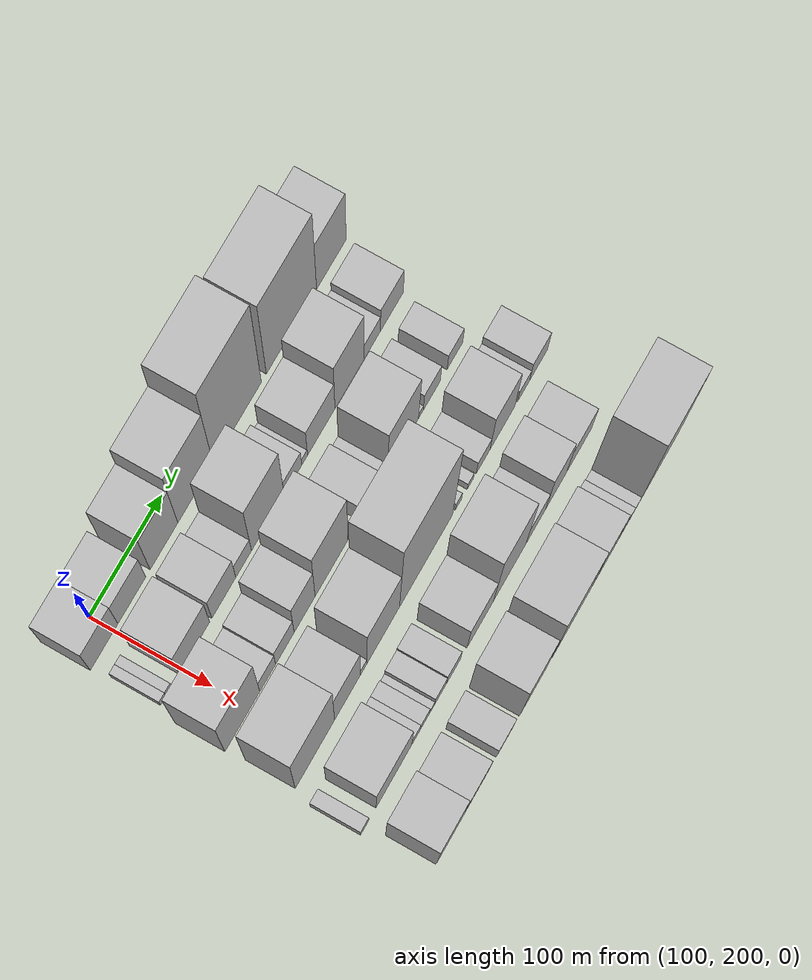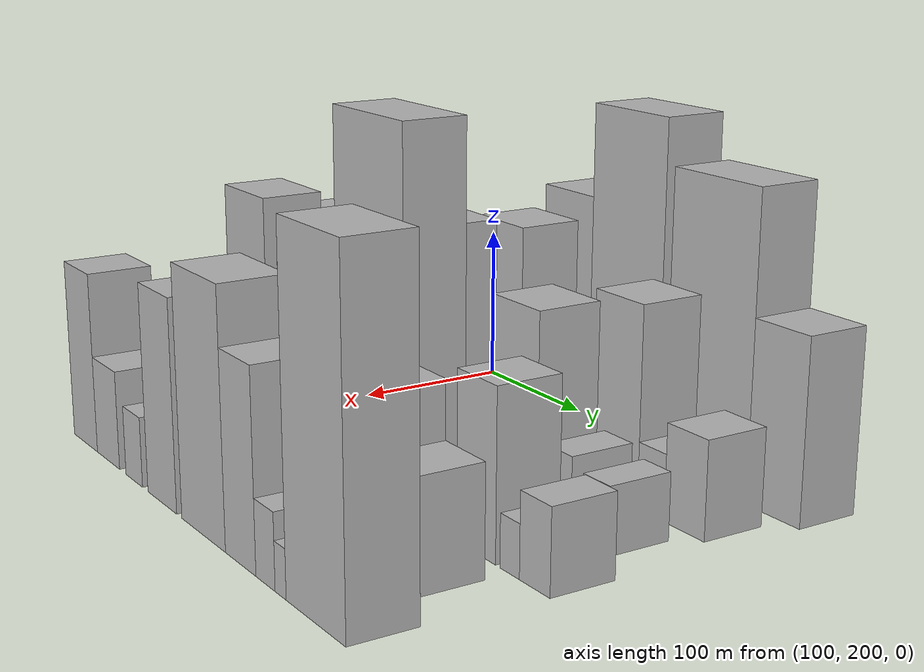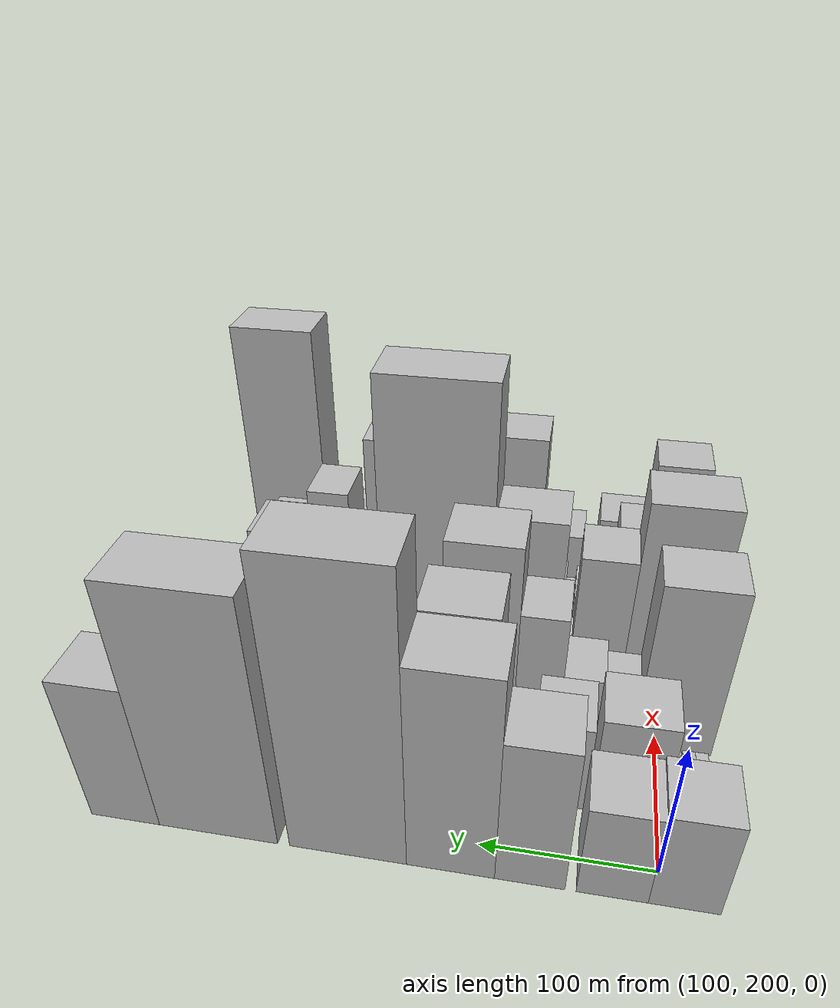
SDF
<sdf version="1.6">
 <world name="default">
  <model name="building_33">
   <static>1</static>
   <pose>100.0000 186.7534 0 0.000000 0.000000 0.000000</pose>
   <link name="link">
    <pose>0 0 36.00 0 0 0</pose>
    <collision name="collision"><geometry><box><size>40.0000 37.7107 72.0000</size></box></geometry></collision>
    <visual name="visual">
     <cast_shadows>0</cast_shadows>
     <geometry><box><size>40.0000 37.7107 72.0000</size></box></geometry>
     <material>
      <script>
       <uri>model://HANNAS_wall/materials/scripts</uri>
       <uri>model://HANNAS_wall/materials/textures</uri>
       <name>vrc/HANNAS_wall</name>
      </script>
     </material>
    </visual>
   </link>
  </model>
  <model name="building_34">
   <static>1</static>
   <pose>100.0000 224.7273 0 0.000000 0.000000 0.000000</pose>
   <link name="link">
    <pose>0 0 34.50 0 0 0</pose>
    <collision name="collision"><geometry><box><size>40.0000 38.2369 69.0000</size></box></geometry></collision>
    <visual name="visual">
     <cast_shadows>0</cast_shadows>
     <geometry><box><size>40.0000 38.2369 69.0000</size></box></geometry>
     <material>
      <script>
       <uri>model://HANNAS_wall/materials/scripts</uri>
       <uri>model://HANNAS_wall/materials/textures</uri>
       <name>vrc/HANNAS_wall</name>
      </script>
     </material>
    </visual>
   </link>
  </model>
  <model name="building_35">
   <static>1</static>
   <pose>100.0000 269.0364 0 0.000000 0.000000 0.000000</pose>
   <link name="link">
    <pose>0 0 54.00 0 0 0</pose>
    <collision name="collision"><geometry><box><size>40.0000 38.3813 108.0000</size></box></geometry></collision>
    <visual name="visual">
     <cast_shadows>0</cast_shadows>
     <geometry><box><size>40.0000 38.3813 108.0000</size></box></geometry>
     <material>
      <script>
       <uri>model://HANNAS_wall/materials/scripts</uri>
       <uri>model://HANNAS_wall/materials/textures</uri>
       <name>vrc/HANNAS_wall</name>
      </script>
     </material>
    </visual>
   </link>
  </model>
  <model name="building_36">
   <static>1</static>
   <pose>100.0000 312.8432 0 0.000000 0.000000 0.000000</pose>
   <link name="link">
    <pose>0 0 75.00 0 0 0</pose>
    <collision name="collision"><geometry><box><size>40.0000 49.2324 150.0000</size></box></geometry></collision>
    <visual name="visual">
     <cast_shadows>0</cast_shadows>
     <geometry><box><size>40.0000 49.2324 150.0000</size></box></geometry>
     <material>
      <script>
       <uri>model://HANNAS_wall/materials/scripts</uri>
       <uri>model://HANNAS_wall/materials/textures</uri>
       <name>vrc/HANNAS_wall</name>
      </script>
     </material>
    </visual>
   </link>
  </model>
  <model name="building_37">
   <static>1</static>
   <pose>100.0000 371.3804 0 0.000000 0.000000 0.000000</pose>
   <link name="link">
    <pose>0 0 103.50 0 0 0</pose>
    <collision name="collision"><geometry><box><size>40.0000 67.8420 207.0000</size></box></geometry></collision>
    <visual name="visual">
     <cast_shadows>0</cast_shadows>
     <geometry><box><size>40.0000 67.8420 207.0000</size></box></geometry>
     <material>
      <script>
       <uri>model://HANNAS_wall/materials/scripts</uri>
       <uri>model://HANNAS_wall/materials/textures</uri>
       <name>vrc/HANNAS_wall</name>
      </script>
     </material>
    </visual>
   </link>
  </model>
  <model name="building_38">
   <static>1</static>
   <pose>100.0000 448.1478 0 0.000000 0.000000 0.000000</pose>
   <link name="link">
    <pose>0 0 90.00 0 0 0</pose>
    <collision name="collision"><geometry><box><size>40.0000 71.6927 180.0000</size></box></geometry></collision>
    <visual name="visual">
     <cast_shadows>0</cast_shadows>
     <geometry><box><size>40.0000 71.6927 180.0000</size></box></geometry>
     <material>
      <script>
       <uri>model://HANNAS_wall/materials/scripts</uri>
       <uri>model://HANNAS_wall/materials/textures</uri>
       <name>vrc/HANNAS_wall</name>
      </script>
     </material>
    </visual>
   </link>
  </model>
  <model name="building_39">
   <static>1</static>
   <pose>100.0000 505.2033 0 0.000000 0.000000 0.000000</pose>
   <link name="link">
    <pose>0 0 54.00 0 0 0</pose>
    <collision name="collision"><geometry><box><size>40.0000 42.4183 108.0000</size></box></geometry></collision>
    <visual name="visual">
     <cast_shadows>0</cast_shadows>
     <geometry><box><size>40.0000 42.4183 108.0000</size></box></geometry>
     <material>
      <script>
       <uri>model://HANNAS_wall/materials/scripts</uri>
       <uri>model://HANNAS_wall/materials/textures</uri>
       <name>vrc/HANNAS_wall</name>
      </script>
     </material>
    </visual>
   </link>
  </model>
  <model name="building_81">
   <static>1</static>
   <pose>155.0000 174.8179 0 0.000000 0.000000 0.000000</pose>
   <link name="link">
    <pose>0 0 9.00 0 0 0</pose>
    <collision name="collision"><geometry><box><size>40.0000 7.5572 18.0000</size></box></geometry></collision>
    <visual name="visual">
     <cast_shadows>0</cast_shadows>
     <geometry><box><size>40.0000 7.5572 18.0000</size></box></geometry>
     <material>
      <script>
       <uri>model://HANNAS_wall/materials/scripts</uri>
       <uri>model://HANNAS_wall/materials/textures</uri>
       <name>vrc/HANNAS_wall</name>
      </script>
     </material>
    </visual>
   </link>
  </model>
  <model name="building_82">
   <static>1</static>
   <pose>155.0000 182.4152 0 0.000000 0.000000 0.000000</pose>
   <link name="link">
    <pose>0 0 9.00 0 0 0</pose>
    <collision name="collision"><geometry><box><size>40.0000 7.6373 18.0000</size></box></geometry></collision>
    <visual name="visual">
     <cast_shadows>0</cast_shadows>
     <geometry><box><size>40.0000 7.6373 18.0000</size></box></geometry>
     <material>
      <script>
       <uri>model://HANNAS_wall/materials/scripts</uri>
       <uri>model://HANNAS_wall/materials/textures</uri>
       <name>vrc/HANNAS_wall</name>
      </script>
     </material>
    </visual>
   </link>
  </model>
  <model name="building_83">
   <static>1</static>
   <pose>155.0000 217.3656 0 0.000000 0.000000 0.000000</pose>
   <link name="link">
    <pose>0 0 37.50 0 0 0</pose>
    <collision name="collision"><geometry><box><size>40.0000 42.2635 75.0000</size></box></geometry></collision>
    <visual name="visual">
     <cast_shadows>0</cast_shadows>
     <geometry><box><size>40.0000 42.2635 75.0000</size></box></geometry>
     <material>
      <script>
       <uri>model://HANNAS_wall/materials/scripts</uri>
       <uri>model://HANNAS_wall/materials/textures</uri>
       <name>vrc/HANNAS_wall</name>
      </script>
     </material>
    </visual>
   </link>
  </model>
  <model name="building_84">
   <static>1</static>
   <pose>155.0000 258.1300 0 0.000000 0.000000 0.000000</pose>
   <link name="link">
    <pose>0 0 33.00 0 0 0</pose>
    <collision name="collision"><geometry><box><size>40.0000 33.2653 66.0000</size></box></geometry></collision>
    <visual name="visual">
     <cast_shadows>0</cast_shadows>
     <geometry><box><size>40.0000 33.2653 66.0000</size></box></geometry>
     <material>
      <script>
       <uri>model://HANNAS_wall/materials/scripts</uri>
       <uri>model://HANNAS_wall/materials/textures</uri>
       <name>vrc/HANNAS_wall</name>
      </script>
     </material>
    </visual>
   </link>
  </model>
  <model name="building_85">
   <static>1</static>
   <pose>155.0000 285.7227 0 0.000000 0.000000 0.000000</pose>
   <link name="link">
    <pose>0 0 21.00 0 0 0</pose>
    <collision name="collision"><geometry><box><size>40.0000 21.9200 42.0000</size></box></geometry></collision>
    <visual name="visual">
     <cast_shadows>0</cast_shadows>
     <geometry><box><size>40.0000 21.9200 42.0000</size></box></geometry>
     <material>
      <script>
       <uri>model://HANNAS_wall/materials/scripts</uri>
       <uri>model://HANNAS_wall/materials/textures</uri>
       <name>vrc/HANNAS_wall</name>
      </script>
     </material>
    </visual>
   </link>
  </model>
  <model name="building_86">
   <static>1</static>
   <pose>155.0000 319.4944 0 0.000000 0.000000 0.000000</pose>
   <link name="link">
    <pose>0 0 69.00 0 0 0</pose>
    <collision name="collision"><geometry><box><size>40.0000 45.6235 138.0000</size></box></geometry></collision>
    <visual name="visual">
     <cast_shadows>0</cast_shadows>
     <geometry><box><size>40.0000 45.6235 138.0000</size></box></geometry>
     <material>
      <script>
       <uri>model://HANNAS_wall/materials/scripts</uri>
       <uri>model://HANNAS_wall/materials/textures</uri>
       <name>vrc/HANNAS_wall</name>
      </script>
     </material>
    </visual>
   </link>
  </model>
  <model name="building_87">
   <static>1</static>
   <pose>155.0000 354.7733 0 0.000000 0.000000 0.000000</pose>
   <link name="link">
    <pose>0 0 21.00 0 0 0</pose>
    <collision name="collision"><geometry><box><size>40.0000 24.9342 42.0000</size></box></geometry></collision>
    <visual name="visual">
     <cast_shadows>0</cast_shadows>
     <geometry><box><size>40.0000 24.9342 42.0000</size></box></geometry>
     <material>
      <script>
       <uri>model://HANNAS_wall/materials/scripts</uri>
       <uri>model://HANNAS_wall/materials/textures</uri>
       <name>vrc/HANNAS_wall</name>
      </script>
     </material>
    </visual>
   </link>
  </model>
  <model name="building_88">
   <static>1</static>
   <pose>155.0000 371.3429 0 0.000000 0.000000 0.000000</pose>
   <link name="link">
    <pose>0 0 9.00 0 0 0</pose>
    <collision name="collision"><geometry><box><size>40.0000 8.2049 18.0000</size></box></geometry></collision>
    <visual name="visual">
     <cast_shadows>0</cast_shadows>
     <geometry><box><size>40.0000 8.2049 18.0000</size></box></geometry>
     <material>
      <script>
       <uri>model://HANNAS_wall/materials/scripts</uri>
       <uri>model://HANNAS_wall/materials/textures</uri>
       <name>vrc/HANNAS_wall</name>
      </script>
     </material>
    </visual>
   </link>
  </model>
  <model name="building_89">
   <static>1</static>
   <pose>155.0000 394.9471 0 0.000000 0.000000 0.000000</pose>
   <link name="link">
    <pose>0 0 36.00 0 0 0</pose>
    <collision name="collision"><geometry><box><size>40.0000 39.0036 72.0000</size></box></geometry></collision>
    <visual name="visual">
     <cast_shadows>0</cast_shadows>
     <geometry><box><size>40.0000 39.0036 72.0000</size></box></geometry>
     <material>
      <script>
       <uri>model://HANNAS_wall/materials/scripts</uri>
       <uri>model://HANNAS_wall/materials/textures</uri>
       <name>vrc/HANNAS_wall</name>
      </script>
     </material>
    </visual>
   </link>
  </model>
  <model name="building_90">
   <static>1</static>
   <pose>155.0000 435.3437 0 0.000000 0.000000 0.000000</pose>
   <link name="link">
    <pose>0 0 58.50 0 0 0</pose>
    <collision name="collision"><geometry><box><size>40.0000 41.7897 117.0000</size></box></geometry></collision>
    <visual name="visual">
     <cast_shadows>0</cast_shadows>
     <geometry><box><size>40.0000 41.7897 117.0000</size></box></geometry>
     <material>
      <script>
       <uri>model://HANNAS_wall/materials/scripts</uri>
       <uri>model://HANNAS_wall/materials/textures</uri>
       <name>vrc/HANNAS_wall</name>
      </script>
     </material>
    </visual>
   </link>
  </model>
  <model name="building_91">
   <static>1</static>
   <pose>155.0000 467.8627 0 0.000000 0.000000 0.000000</pose>
   <link name="link">
    <pose>0 0 19.50 0 0 0</pose>
    <collision name="collision"><geometry><box><size>40.0000 23.2482 39.0000</size></box></geometry></collision>
    <visual name="visual">
     <cast_shadows>0</cast_shadows>
     <geometry><box><size>40.0000 23.2482 39.0000</size></box></geometry>
     <material>
      <script>
       <uri>model://HANNAS_wall/materials/scripts</uri>
       <uri>model://HANNAS_wall/materials/textures</uri>
       <name>vrc/HANNAS_wall</name>
      </script>
     </material>
    </visual>
   </link>
  </model>
  <model name="building_92">
   <static>1</static>
   <pose>155.0000 496.0724 0 0.000000 0.000000 0.000000</pose>
   <link name="link">
    <pose>0 0 28.50 0 0 0</pose>
    <collision name="collision"><geometry><box><size>40.0000 33.1713 57.0000</size></box></geometry></collision>
    <visual name="visual">
     <cast_shadows>0</cast_shadows>
     <geometry><box><size>40.0000 33.1713 57.0000</size></box></geometry>
     <material>
      <script>
       <uri>model://HANNAS_wall/materials/scripts</uri>
       <uri>model://HANNAS_wall/materials/textures</uri>
       <name>vrc/HANNAS_wall</name>
      </script>
     </material>
    </visual>
   </link>
  </model>
  <model name="building_136">
   <static>1</static>
   <pose>210.0000 189.4124 0 0.000000 0.000000 0.000000</pose>
   <link name="link">
    <pose>0 0 64.50 0 0 0</pose>
    <collision name="collision"><geometry><box><size>40.0000 48.0362 129.0000</size></box></geometry></collision>
    <visual name="visual">
     <cast_shadows>0</cast_shadows>
     <geometry><box><size>40.0000 48.0362 129.0000</size></box></geometry>
     <material>
      <script>
       <uri>model://HANNAS_wall/materials/scripts</uri>
       <uri>model://HANNAS_wall/materials/textures</uri>
       <name>vrc/HANNAS_wall</name>
      </script>
     </material>
    </visual>
   </link>
  </model>
  <model name="building_137">
   <static>1</static>
   <pose>210.0000 224.4299 0 0.000000 0.000000 0.000000</pose>
   <link name="link">
    <pose>0 0 21.00 0 0 0</pose>
    <collision name="collision"><geometry><box><size>40.0000 21.9990 42.0000</size></box></geometry></collision>
    <visual name="visual">
     <cast_shadows>0</cast_shadows>
     <geometry><box><size>40.0000 21.9990 42.0000</size></box></geometry>
     <material>
      <script>
       <uri>model://HANNAS_wall/materials/scripts</uri>
       <uri>model://HANNAS_wall/materials/textures</uri>
       <name>vrc/HANNAS_wall</name>
      </script>
     </material>
    </visual>
   </link>
  </model>
  <model name="building_138">
   <static>1</static>
   <pose>210.0000 248.3579 0 0.000000 0.000000 0.000000</pose>
   <link name="link">
    <pose>0 0 25.50 0 0 0</pose>
    <collision name="collision"><geometry><box><size>40.0000 25.8571 51.0000</size></box></geometry></collision>
    <visual name="visual">
     <cast_shadows>0</cast_shadows>
     <geometry><box><size>40.0000 25.8571 51.0000</size></box></geometry>
     <material>
      <script>
       <uri>model://HANNAS_wall/materials/scripts</uri>
       <uri>model://HANNAS_wall/materials/textures</uri>
       <name>vrc/HANNAS_wall</name>
      </script>
     </material>
    </visual>
   </link>
  </model>
  <model name="building_139">
   <static>1</static>
   <pose>210.0000 275.9244 0 0.000000 0.000000 0.000000</pose>
   <link name="link">
    <pose>0 0 48.00 0 0 0</pose>
    <collision name="collision"><geometry><box><size>40.0000 29.2758 96.0000</size></box></geometry></collision>
    <visual name="visual">
     <cast_shadows>0</cast_shadows>
     <geometry><box><size>40.0000 29.2758 96.0000</size></box></geometry>
     <material>
      <script>
       <uri>model://HANNAS_wall/materials/scripts</uri>
       <uri>model://HANNAS_wall/materials/textures</uri>
       <name>vrc/HANNAS_wall</name>
      </script>
     </material>
    </visual>
   </link>
  </model>
  <model name="building_140">
   <static>1</static>
   <pose>210.0000 313.6726 0 0.000000 0.000000 0.000000</pose>
   <link name="link">
    <pose>0 0 72.00 0 0 0</pose>
    <collision name="collision"><geometry><box><size>40.0000 46.2206 144.0000</size></box></geometry></collision>
    <visual name="visual">
     <cast_shadows>0</cast_shadows>
     <geometry><box><size>40.0000 46.2206 144.0000</size></box></geometry>
     <material>
      <script>
       <uri>model://HANNAS_wall/materials/scripts</uri>
       <uri>model://HANNAS_wall/materials/textures</uri>
       <name>vrc/HANNAS_wall</name>
      </script>
     </material>
    </visual>
   </link>
  </model>
  <model name="building_141">
   <static>1</static>
   <pose>210.0000 340.8838 0 0.000000 0.000000 0.000000</pose>
   <link name="link">
    <pose>0 0 9.00 0 0 0</pose>
    <collision name="collision"><geometry><box><size>40.0000 8.2020 18.0000</size></box></geometry></collision>
    <visual name="visual">
     <cast_shadows>0</cast_shadows>
     <geometry><box><size>40.0000 8.2020 18.0000</size></box></geometry>
     <material>
      <script>
       <uri>model://HANNAS_wall/materials/scripts</uri>
       <uri>model://HANNAS_wall/materials/textures</uri>
       <name>vrc/HANNAS_wall</name>
      </script>
     </material>
    </visual>
   </link>
  </model>
  <model name="building_142">
   <static>1</static>
   <pose>210.0000 367.3639 0 0.000000 0.000000 0.000000</pose>
   <link name="link">
    <pose>0 0 24.00 0 0 0</pose>
    <collision name="collision"><geometry><box><size>40.0000 28.7582 48.0000</size></box></geometry></collision>
    <visual name="visual">
     <cast_shadows>0</cast_shadows>
     <geometry><box><size>40.0000 28.7582 48.0000</size></box></geometry>
     <material>
      <script>
       <uri>model://HANNAS_wall/materials/scripts</uri>
       <uri>model://HANNAS_wall/materials/textures</uri>
       <name>vrc/HANNAS_wall</name>
      </script>
     </material>
    </visual>
   </link>
  </model>
  <model name="building_143">
   <static>1</static>
   <pose>210.0000 387.4172 0 0.000000 0.000000 0.000000</pose>
   <link name="link">
    <pose>0 0 13.50 0 0 0</pose>
    <collision name="collision"><geometry><box><size>40.0000 11.3484 27.0000</size></box></geometry></collision>
    <visual name="visual">
     <cast_shadows>0</cast_shadows>
     <geometry><box><size>40.0000 11.3484 27.0000</size></box></geometry>
     <material>
      <script>
       <uri>model://HANNAS_wall/materials/scripts</uri>
       <uri>model://HANNAS_wall/materials/textures</uri>
       <name>vrc/HANNAS_wall</name>
      </script>
     </material>
    </visual>
   </link>
  </model>
  <model name="building_144">
   <static>1</static>
   <pose>210.0000 415.2209 0 0.000000 0.000000 0.000000</pose>
   <link name="link">
    <pose>0 0 58.50 0 0 0</pose>
    <collision name="collision"><geometry><box><size>40.0000 44.2590 117.0000</size></box></geometry></collision>
    <visual name="visual">
     <cast_shadows>0</cast_shadows>
     <geometry><box><size>40.0000 44.2590 117.0000</size></box></geometry>
     <material>
      <script>
       <uri>model://HANNAS_wall/materials/scripts</uri>
       <uri>model://HANNAS_wall/materials/textures</uri>
       <name>vrc/HANNAS_wall</name>
      </script>
     </material>
    </visual>
   </link>
  </model>
  <model name="building_145">
   <static>1</static>
   <pose>210.0000 440.8115 0 0.000000 0.000000 0.000000</pose>
   <link name="link">
    <pose>0 0 7.50 0 0 0</pose>
    <collision name="collision"><geometry><box><size>40.0000 6.9223 15.0000</size></box></geometry></collision>
    <visual name="visual">
     <cast_shadows>0</cast_shadows>
     <geometry><box><size>40.0000 6.9223 15.0000</size></box></geometry>
     <material>
      <script>
       <uri>model://HANNAS_wall/materials/scripts</uri>
       <uri>model://HANNAS_wall/materials/textures</uri>
       <name>vrc/HANNAS_wall</name>
      </script>
     </material>
    </visual>
   </link>
  </model>
  <model name="building_146">
   <static>1</static>
   <pose>210.0000 456.5092 0 0.000000 0.000000 0.000000</pose>
   <link name="link">
    <pose>0 0 22.50 0 0 0</pose>
    <collision name="collision"><geometry><box><size>40.0000 24.4731 45.0000</size></box></geometry></collision>
    <visual name="visual">
     <cast_shadows>0</cast_shadows>
     <geometry><box><size>40.0000 24.4731 45.0000</size></box></geometry>
     <material>
      <script>
       <uri>model://HANNAS_wall/materials/scripts</uri>
       <uri>model://HANNAS_wall/materials/textures</uri>
       <name>vrc/HANNAS_wall</name>
      </script>
     </material>
    </visual>
   </link>
  </model>
  <model name="building_147">
   <static>1</static>
   <pose>210.0000 490.0918 0 0.000000 0.000000 0.000000</pose>
   <link name="link">
    <pose>0 0 19.50 0 0 0</pose>
    <collision name="collision"><geometry><box><size>40.0000 22.6921 39.0000</size></box></geometry></collision>
    <visual name="visual">
     <cast_shadows>0</cast_shadows>
     <geometry><box><size>40.0000 22.6921 39.0000</size></box></geometry>
     <material>
      <script>
       <uri>model://HANNAS_wall/materials/scripts</uri>
       <uri>model://HANNAS_wall/materials/textures</uri>
       <name>vrc/HANNAS_wall</name>
      </script>
     </material>
    </visual>
   </link>
  </model>
  <model name="building_188">
   <static>1</static>
   <pose>265.0000 194.6613 0 0.000000 0.000000 0.000000</pose>
   <link name="link">
    <pose>0 0 73.50 0 0 0</pose>
    <collision name="collision"><geometry><box><size>40.0000 54.4709 147.0000</size></box></geometry></collision>
    <visual name="visual">
     <cast_shadows>0</cast_shadows>
     <geometry><box><size>40.0000 54.4709 147.0000</size></box></geometry>
     <material>
      <script>
       <uri>model://HANNAS_wall/materials/scripts</uri>
       <uri>model://HANNAS_wall/materials/textures</uri>
       <name>vrc/HANNAS_wall</name>
      </script>
     </material>
    </visual>
   </link>
  </model>
  <model name="building_189">
   <static>1</static>
   <pose>265.0000 239.8734 0 0.000000 0.000000 0.000000</pose>
   <link name="link">
    <pose>0 0 51.00 0 0 0</pose>
    <collision name="collision"><geometry><box><size>40.0000 35.9532 102.0000</size></box></geometry></collision>
    <visual name="visual">
     <cast_shadows>0</cast_shadows>
     <geometry><box><size>40.0000 35.9532 102.0000</size></box></geometry>
     <material>
      <script>
       <uri>model://HANNAS_wall/materials/scripts</uri>
       <uri>model://HANNAS_wall/materials/textures</uri>
       <name>vrc/HANNAS_wall</name>
      </script>
     </material>
    </visual>
   </link>
  </model>
  <model name="building_190">
   <static>1</static>
   <pose>265.0000 262.5750 0 0.000000 0.000000 0.000000</pose>
   <link name="link">
    <pose>0 0 10.50 0 0 0</pose>
    <collision name="collision"><geometry><box><size>40.0000 9.4501 21.0000</size></box></geometry></collision>
    <visual name="visual">
     <cast_shadows>0</cast_shadows>
     <geometry><box><size>40.0000 9.4501 21.0000</size></box></geometry>
     <material>
      <script>
       <uri>model://HANNAS_wall/materials/scripts</uri>
       <uri>model://HANNAS_wall/materials/textures</uri>
       <name>vrc/HANNAS_wall</name>
      </script>
     </material>
    </visual>
   </link>
  </model>
  <model name="building_191">
   <static>1</static>
   <pose>265.0000 290.2228 0 0.000000 0.000000 0.000000</pose>
   <link name="link">
    <pose>0 0 63.00 0 0 0</pose>
    <collision name="collision"><geometry><box><size>40.0000 45.8455 126.0000</size></box></geometry></collision>
    <visual name="visual">
     <cast_shadows>0</cast_shadows>
     <geometry><box><size>40.0000 45.8455 126.0000</size></box></geometry>
     <material>
      <script>
       <uri>model://HANNAS_wall/materials/scripts</uri>
       <uri>model://HANNAS_wall/materials/textures</uri>
       <name>vrc/HANNAS_wall</name>
      </script>
     </material>
    </visual>
   </link>
  </model>
  <model name="building_192">
   <static>1</static>
   <pose>265.0000 350.9503 0 0.000000 0.000000 0.000000</pose>
   <link name="link">
    <pose>0 0 108.00 0 0 0</pose>
    <collision name="collision"><geometry><box><size>40.0000 75.6094 216.0000</size></box></geometry></collision>
    <visual name="visual">
     <cast_shadows>0</cast_shadows>
     <geometry><box><size>40.0000 75.6094 216.0000</size></box></geometry>
     <material>
      <script>
       <uri>model://HANNAS_wall/materials/scripts</uri>
       <uri>model://HANNAS_wall/materials/textures</uri>
       <name>vrc/HANNAS_wall</name>
      </script>
     </material>
    </visual>
   </link>
  </model>
  <model name="building_193">
   <static>1</static>
   <pose>265.0000 397.3868 0 0.000000 0.000000 0.000000</pose>
   <link name="link">
    <pose>0 0 10.50 0 0 0</pose>
    <collision name="collision"><geometry><box><size>40.0000 9.2637 21.0000</size></box></geometry></collision>
    <visual name="visual">
     <cast_shadows>0</cast_shadows>
     <geometry><box><size>40.0000 9.2637 21.0000</size></box></geometry>
     <material>
      <script>
       <uri>model://HANNAS_wall/materials/scripts</uri>
       <uri>model://HANNAS_wall/materials/textures</uri>
       <name>vrc/HANNAS_wall</name>
      </script>
     </material>
    </visual>
   </link>
  </model>
  <model name="building_194">
   <static>1</static>
   <pose>265.0000 414.5088 0 0.000000 0.000000 0.000000</pose>
   <link name="link">
    <pose>0 0 9.00 0 0 0</pose>
    <collision name="collision"><geometry><box><size>40.0000 8.9802 18.0000</size></box></geometry></collision>
    <visual name="visual">
     <cast_shadows>0</cast_shadows>
     <geometry><box><size>40.0000 8.9802 18.0000</size></box></geometry>
     <material>
      <script>
       <uri>model://HANNAS_wall/materials/scripts</uri>
       <uri>model://HANNAS_wall/materials/textures</uri>
       <name>vrc/HANNAS_wall</name>
      </script>
     </material>
    </visual>
   </link>
  </model>
  <model name="building_195">
   <static>1</static>
   <pose>265.0000 432.7930 0 0.000000 0.000000 0.000000</pose>
   <link name="link">
    <pose>0 0 18.00 0 0 0</pose>
    <collision name="collision"><geometry><box><size>40.0000 19.5882 36.0000</size></box></geometry></collision>
    <visual name="visual">
     <cast_shadows>0</cast_shadows>
     <geometry><box><size>40.0000 19.5882 36.0000</size></box></geometry>
     <material>
      <script>
       <uri>model://HANNAS_wall/materials/scripts</uri>
       <uri>model://HANNAS_wall/materials/textures</uri>
       <name>vrc/HANNAS_wall</name>
      </script>
     </material>
    </visual>
   </link>
  </model>
  <model name="building_196">
   <static>1</static>
   <pose>265.0000 460.8091 0 0.000000 0.000000 0.000000</pose>
   <link name="link">
    <pose>0 0 48.00 0 0 0</pose>
    <collision name="collision"><geometry><box><size>40.0000 36.4441 96.0000</size></box></geometry></collision>
    <visual name="visual">
     <cast_shadows>0</cast_shadows>
     <geometry><box><size>40.0000 36.4441 96.0000</size></box></geometry>
     <material>
      <script>
       <uri>model://HANNAS_wall/materials/scripts</uri>
       <uri>model://HANNAS_wall/materials/textures</uri>
       <name>vrc/HANNAS_wall</name>
      </script>
     </material>
    </visual>
   </link>
  </model>
  <model name="building_197">
   <static>1</static>
   <pose>265.0000 491.7063 0 0.000000 0.000000 0.000000</pose>
   <link name="link">
    <pose>0 0 15.00 0 0 0</pose>
    <collision name="collision"><geometry><box><size>40.0000 17.3502 30.0000</size></box></geometry></collision>
    <visual name="visual">
     <cast_shadows>0</cast_shadows>
     <geometry><box><size>40.0000 17.3502 30.0000</size></box></geometry>
     <material>
      <script>
       <uri>model://HANNAS_wall/materials/scripts</uri>
       <uri>model://HANNAS_wall/materials/textures</uri>
       <name>vrc/HANNAS_wall</name>
      </script>
     </material>
    </visual>
   </link>
  </model>
  <model name="building_198">
   <static>1</static>
   <pose>265.0000 513.5378 0 0.000000 0.000000 0.000000</pose>
   <link name="link">
    <pose>0 0 24.00 0 0 0</pose>
    <collision name="collision"><geometry><box><size>40.0000 26.3129 48.0000</size></box></geometry></collision>
    <visual name="visual">
     <cast_shadows>0</cast_shadows>
     <geometry><box><size>40.0000 26.3129 48.0000</size></box></geometry>
     <material>
      <script>
       <uri>model://HANNAS_wall/materials/scripts</uri>
       <uri>model://HANNAS_wall/materials/textures</uri>
       <name>vrc/HANNAS_wall</name>
      </script>
     </material>
    </visual>
   </link>
  </model>
  <model name="building_239">
   <static>1</static>
   <pose>320.0000 167.6304 0 0.000000 0.000000 0.000000</pose>
   <link name="link">
    <pose>0 0 12.00 0 0 0</pose>
    <collision name="collision"><geometry><box><size>40.0000 11.4791 24.0000</size></box></geometry></collision>
    <visual name="visual">
     <cast_shadows>0</cast_shadows>
     <geometry><box><size>40.0000 11.4791 24.0000</size></box></geometry>
     <material>
      <script>
       <uri>model://HANNAS_wall/materials/scripts</uri>
       <uri>model://HANNAS_wall/materials/textures</uri>
       <name>vrc/HANNAS_wall</name>
      </script>
     </material>
    </visual>
   </link>
  </model>
  <model name="building_240">
   <static>1</static>
   <pose>320.0000 208.1739 0 0.000000 0.000000 0.000000</pose>
   <link name="link">
    <pose>0 0 43.50 0 0 0</pose>
    <collision name="collision"><geometry><box><size>40.0000 49.6078 87.0000</size></box></geometry></collision>
    <visual name="visual">
     <cast_shadows>0</cast_shadows>
     <geometry><box><size>40.0000 49.6078 87.0000</size></box></geometry>
     <material>
      <script>
       <uri>model://HANNAS_wall/materials/scripts</uri>
       <uri>model://HANNAS_wall/materials/textures</uri>
       <name>vrc/HANNAS_wall</name>
      </script>
     </material>
    </visual>
   </link>
  </model>
  <model name="building_241">
   <static>1</static>
   <pose>320.0000 239.3471 0 0.000000 0.000000 0.000000</pose>
   <link name="link">
    <pose>0 0 13.50 0 0 0</pose>
    <collision name="collision"><geometry><box><size>40.0000 12.7386 27.0000</size></box></geometry></collision>
    <visual name="visual">
     <cast_shadows>0</cast_shadows>
     <geometry><box><size>40.0000 12.7386 27.0000</size></box></geometry>
     <material>
      <script>
       <uri>model://HANNAS_wall/materials/scripts</uri>
       <uri>model://HANNAS_wall/materials/textures</uri>
       <name>vrc/HANNAS_wall</name>
      </script>
     </material>
    </visual>
   </link>
  </model>
  <model name="building_242">
   <static>1</static>
   <pose>320.0000 252.1075 0 0.000000 0.000000 0.000000</pose>
   <link name="link">
    <pose>0 0 13.50 0 0 0</pose>
    <collision name="collision"><geometry><box><size>40.0000 12.7823 27.0000</size></box></geometry></collision>
    <visual name="visual">
     <cast_shadows>0</cast_shadows>
     <geometry><box><size>40.0000 12.7823 27.0000</size></box></geometry>
     <material>
      <script>
       <uri>model://HANNAS_wall/materials/scripts</uri>
       <uri>model://HANNAS_wall/materials/textures</uri>
       <name>vrc/HANNAS_wall</name>
      </script>
     </material>
    </visual>
   </link>
  </model>
  <model name="building_243">
   <static>1</static>
   <pose>320.0000 262.0984 0 0.000000 0.000000 0.000000</pose>
   <link name="link">
    <pose>0 0 7.50 0 0 0</pose>
    <collision name="collision"><geometry><box><size>40.0000 7.1996 15.0000</size></box></geometry></collision>
    <visual name="visual">
     <cast_shadows>0</cast_shadows>
     <geometry><box><size>40.0000 7.1996 15.0000</size></box></geometry>
     <material>
      <script>
       <uri>model://HANNAS_wall/materials/scripts</uri>
       <uri>model://HANNAS_wall/materials/textures</uri>
       <name>vrc/HANNAS_wall</name>
      </script>
     </material>
    </visual>
   </link>
  </model>
  <model name="building_244">
   <static>1</static>
   <pose>320.0000 274.0510 0 0.000000 0.000000 0.000000</pose>
   <link name="link">
    <pose>0 0 15.00 0 0 0</pose>
    <collision name="collision"><geometry><box><size>40.0000 16.7056 30.0000</size></box></geometry></collision>
    <visual name="visual">
     <cast_shadows>0</cast_shadows>
     <geometry><box><size>40.0000 16.7056 30.0000</size></box></geometry>
     <material>
      <script>
       <uri>model://HANNAS_wall/materials/scripts</uri>
       <uri>model://HANNAS_wall/materials/textures</uri>
       <name>vrc/HANNAS_wall</name>
      </script>
     </material>
    </visual>
   </link>
  </model>
  <model name="building_245">
   <static>1</static>
   <pose>320.0000 292.4789 0 0.000000 0.000000 0.000000</pose>
   <link name="link">
    <pose>0 0 18.00 0 0 0</pose>
    <collision name="collision"><geometry><box><size>40.0000 20.1502 36.0000</size></box></geometry></collision>
    <visual name="visual">
     <cast_shadows>0</cast_shadows>
     <geometry><box><size>40.0000 20.1502 36.0000</size></box></geometry>
     <material>
      <script>
       <uri>model://HANNAS_wall/materials/scripts</uri>
       <uri>model://HANNAS_wall/materials/textures</uri>
       <name>vrc/HANNAS_wall</name>
      </script>
     </material>
    </visual>
   </link>
  </model>
  <model name="building_246">
   <static>1</static>
   <pose>320.0000 330.4842 0 0.000000 0.000000 0.000000</pose>
   <link name="link">
    <pose>0 0 37.50 0 0 0</pose>
    <collision name="collision"><geometry><box><size>40.0000 37.8604 75.0000</size></box></geometry></collision>
    <visual name="visual">
     <cast_shadows>0</cast_shadows>
     <geometry><box><size>40.0000 37.8604 75.0000</size></box></geometry>
     <material>
      <script>
       <uri>model://HANNAS_wall/materials/scripts</uri>
       <uri>model://HANNAS_wall/materials/textures</uri>
       <name>vrc/HANNAS_wall</name>
      </script>
     </material>
    </visual>
   </link>
  </model>
  <model name="building_247">
   <static>1</static>
   <pose>320.0000 372.4723 0 0.000000 0.000000 0.000000</pose>
   <link name="link">
    <pose>0 0 75.00 0 0 0</pose>
    <collision name="collision"><geometry><box><size>40.0000 46.1159 150.0000</size></box></geometry></collision>
    <visual name="visual">
     <cast_shadows>0</cast_shadows>
     <geometry><box><size>40.0000 46.1159 150.0000</size></box></geometry>
     <material>
      <script>
       <uri>model://HANNAS_wall/materials/scripts</uri>
       <uri>model://HANNAS_wall/materials/textures</uri>
       <name>vrc/HANNAS_wall</name>
      </script>
     </material>
    </visual>
   </link>
  </model>
  <model name="building_248">
   <static>1</static>
   <pose>320.0000 410.0770 0 0.000000 0.000000 0.000000</pose>
   <link name="link">
    <pose>0 0 27.00 0 0 0</pose>
    <collision name="collision"><geometry><box><size>40.0000 29.0935 54.0000</size></box></geometry></collision>
    <visual name="visual">
     <cast_shadows>0</cast_shadows>
     <geometry><box><size>40.0000 29.0935 54.0000</size></box></geometry>
     <material>
      <script>
       <uri>model://HANNAS_wall/materials/scripts</uri>
       <uri>model://HANNAS_wall/materials/textures</uri>
       <name>vrc/HANNAS_wall</name>
      </script>
     </material>
    </visual>
   </link>
  </model>
  <model name="building_249">
   <static>1</static>
   <pose>320.0000 439.7860 0 0.000000 0.000000 0.000000</pose>
   <link name="link">
    <pose>0 0 48.00 0 0 0</pose>
    <collision name="collision"><geometry><box><size>40.0000 30.3244 96.0000</size></box></geometry></collision>
    <visual name="visual">
     <cast_shadows>0</cast_shadows>
     <geometry><box><size>40.0000 30.3244 96.0000</size></box></geometry>
     <material>
      <script>
       <uri>model://HANNAS_wall/materials/scripts</uri>
       <uri>model://HANNAS_wall/materials/textures</uri>
       <name>vrc/HANNAS_wall</name>
      </script>
     </material>
    </visual>
   </link>
  </model>
  <model name="building_250">
   <static>1</static>
   <pose>320.0000 473.3218 0 0.000000 0.000000 0.000000</pose>
   <link name="link">
    <pose>0 0 31.50 0 0 0</pose>
    <collision name="collision"><geometry><box><size>40.0000 36.7473 63.0000</size></box></geometry></collision>
    <visual name="visual">
     <cast_shadows>0</cast_shadows>
     <geometry><box><size>40.0000 36.7473 63.0000</size></box></geometry>
     <material>
      <script>
       <uri>model://HANNAS_wall/materials/scripts</uri>
       <uri>model://HANNAS_wall/materials/textures</uri>
       <name>vrc/HANNAS_wall</name>
      </script>
     </material>
    </visual>
   </link>
  </model>
  <model name="building_297">
   <static>1</static>
   <pose>375.0000 189.8526 0 0.000000 0.000000 0.000000</pose>
   <link name="link">
    <pose>0 0 55.50 0 0 0</pose>
    <collision name="collision"><geometry><box><size>40.0000 39.1516 111.0000</size></box></geometry></collision>
    <visual name="visual">
     <cast_shadows>0</cast_shadows>
     <geometry><box><size>40.0000 39.1516 111.0000</size></box></geometry>
     <material>
      <script>
       <uri>model://HANNAS_wall/materials/scripts</uri>
       <uri>model://HANNAS_wall/materials/textures</uri>
       <name>vrc/HANNAS_wall</name>
      </script>
     </material>
    </visual>
   </link>
  </model>
  <model name="building_298">
   <static>1</static>
   <pose>375.0000 227.2237 0 0.000000 0.000000 0.000000</pose>
   <link name="link">
    <pose>0 0 30.00 0 0 0</pose>
    <collision name="collision"><geometry><box><size>40.0000 35.5905 60.0000</size></box></geometry></collision>
    <visual name="visual">
     <cast_shadows>0</cast_shadows>
     <geometry><box><size>40.0000 35.5905 60.0000</size></box></geometry>
     <material>
      <script>
       <uri>model://HANNAS_wall/materials/scripts</uri>
       <uri>model://HANNAS_wall/materials/textures</uri>
       <name>vrc/HANNAS_wall</name>
      </script>
     </material>
    </visual>
   </link>
  </model>
  <model name="building_299">
   <static>1</static>
   <pose>375.0000 267.4770 0 0.000000 0.000000 0.000000</pose>
   <link name="link">
    <pose>0 0 21.00 0 0 0</pose>
    <collision name="collision"><geometry><box><size>40.0000 24.9162 42.0000</size></box></geometry></collision>
    <visual name="visual">
     <cast_shadows>0</cast_shadows>
     <geometry><box><size>40.0000 24.9162 42.0000</size></box></geometry>
     <material>
      <script>
       <uri>model://HANNAS_wall/materials/scripts</uri>
       <uri>model://HANNAS_wall/materials/textures</uri>
       <name>vrc/HANNAS_wall</name>
      </script>
     </material>
    </visual>
   </link>
  </model>
  <model name="building_300">
   <static>1</static>
   <pose>375.0000 308.1247 0 0.000000 0.000000 0.000000</pose>
   <link name="link">
    <pose>0 0 61.50 0 0 0</pose>
    <collision name="collision"><geometry><box><size>40.0000 40.3791 123.0000</size></box></geometry></collision>
    <visual name="visual">
     <cast_shadows>0</cast_shadows>
     <geometry><box><size>40.0000 40.3791 123.0000</size></box></geometry>
     <material>
      <script>
       <uri>model://HANNAS_wall/materials/scripts</uri>
       <uri>model://HANNAS_wall/materials/textures</uri>
       <name>vrc/HANNAS_wall</name>
      </script>
     </material>
    </visual>
   </link>
  </model>
  <model name="building_301">
   <static>1</static>
   <pose>375.0000 363.1925 0 0.000000 0.000000 0.000000</pose>
   <link name="link">
    <pose>0 0 72.00 0 0 0</pose>
    <collision name="collision"><geometry><box><size>40.0000 55.7565 144.0000</size></box></geometry></collision>
    <visual name="visual">
     <cast_shadows>0</cast_shadows>
     <geometry><box><size>40.0000 55.7565 144.0000</size></box></geometry>
     <material>
      <script>
       <uri>model://HANNAS_wall/materials/scripts</uri>
       <uri>model://HANNAS_wall/materials/textures</uri>
       <name>vrc/HANNAS_wall</name>
      </script>
     </material>
    </visual>
   </link>
  </model>
  <model name="building_302">
   <static>1</static>
   <pose>375.0000 408.9447 0 0.000000 0.000000 0.000000</pose>
   <link name="link">
    <pose>0 0 55.50 0 0 0</pose>
    <collision name="collision"><geometry><box><size>40.0000 35.7480 111.0000</size></box></geometry></collision>
    <visual name="visual">
     <cast_shadows>0</cast_shadows>
     <geometry><box><size>40.0000 35.7480 111.0000</size></box></geometry>
     <material>
      <script>
       <uri>model://HANNAS_wall/materials/scripts</uri>
       <uri>model://HANNAS_wall/materials/textures</uri>
       <name>vrc/HANNAS_wall</name>
      </script>
     </material>
    </visual>
   </link>
  </model>
  <model name="building_303">
   <static>1</static>
   <pose>375.0000 437.5085 0 0.000000 0.000000 0.000000</pose>
   <link name="link">
    <pose>0 0 21.00 0 0 0</pose>
    <collision name="collision"><geometry><box><size>40.0000 21.3794 42.0000</size></box></geometry></collision>
    <visual name="visual">
     <cast_shadows>0</cast_shadows>
     <geometry><box><size>40.0000 21.3794 42.0000</size></box></geometry>
     <material>
      <script>
       <uri>model://HANNAS_wall/materials/scripts</uri>
       <uri>model://HANNAS_wall/materials/textures</uri>
       <name>vrc/HANNAS_wall</name>
      </script>
     </material>
    </visual>
   </link>
  </model>
  <model name="building_304">
   <static>1</static>
   <pose>375.0000 454.1311 0 0.000000 0.000000 0.000000</pose>
   <link name="link">
    <pose>0 0 13.50 0 0 0</pose>
    <collision name="collision"><geometry><box><size>40.0000 11.8658 27.0000</size></box></geometry></collision>
    <visual name="visual">
     <cast_shadows>0</cast_shadows>
     <geometry><box><size>40.0000 11.8658 27.0000</size></box></geometry>
     <material>
      <script>
       <uri>model://HANNAS_wall/materials/scripts</uri>
       <uri>model://HANNAS_wall/materials/textures</uri>
       <name>vrc/HANNAS_wall</name>
      </script>
     </material>
    </visual>
   </link>
  </model>
  <model name="building_305">
   <static>1</static>
   <pose>375.0000 489.9759 0 0.000000 0.000000 0.000000</pose>
   <link name="link">
    <pose>0 0 96.00 0 0 0</pose>
    <collision name="collision"><geometry><box><size>40.0000 59.8240 192.0000</size></box></geometry></collision>
    <visual name="visual">
     <cast_shadows>0</cast_shadows>
     <geometry><box><size>40.0000 59.8240 192.0000</size></box></geometry>
     <material>
      <script>
       <uri>model://HANNAS_wall/materials/scripts</uri>
       <uri>model://HANNAS_wall/materials/textures</uri>
       <name>vrc/HANNAS_wall</name>
      </script>
     </material>
    </visual>
   </link>
  </model>
 </world>
</sdf>
